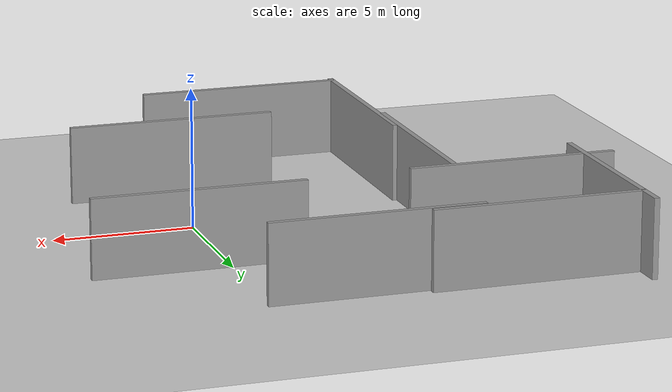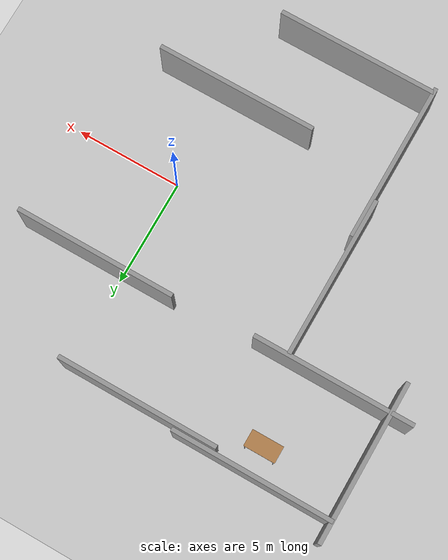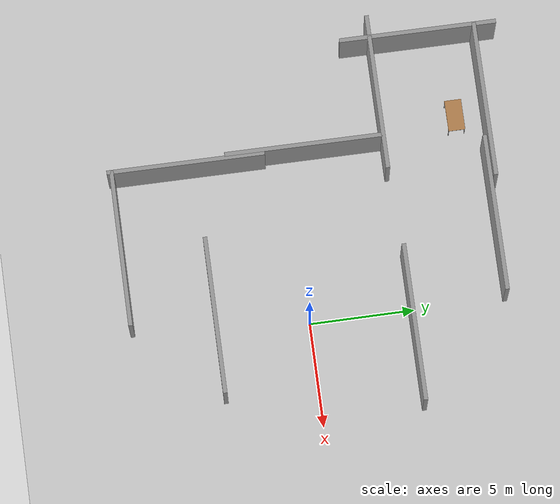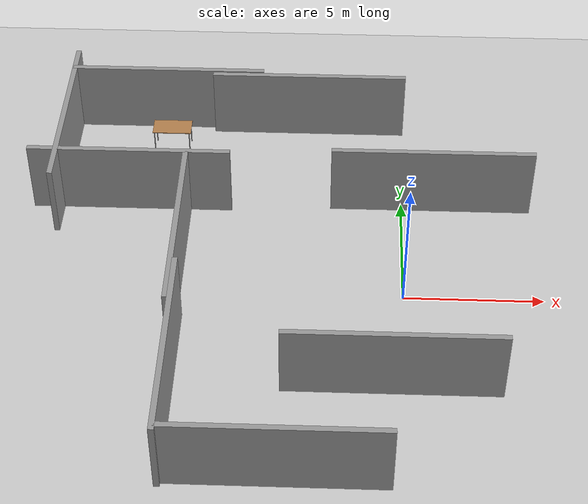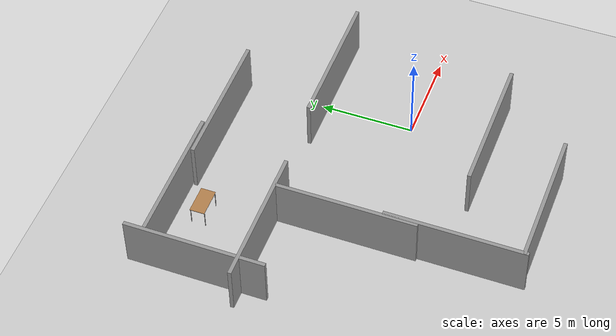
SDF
<sdf version="1.7">
 <world name="default">
  <model name="ground_plane">
   <static>1</static>
   <link name="link_1">
    <collision name="collision">
     <geometry><plane><normal>0 0 1</normal><size>100 100</size></plane></geometry>
     <surface><friction><ode><mu>100</mu><mu2>50</mu2></ode></friction></surface>
    </collision>
    <visual name="visual">
     <cast_shadows>0</cast_shadows>
     <geometry><plane><normal>0 0 1</normal><size>100 100</size></plane></geometry>
     <material>
      <script><uri>file://media/materials/scripts/gazebo.material</uri><name>Gazebo/Grey</name></script>
     </material>
    </visual>
   </link>
  </model>
  <model name="grey_wall_clone">
   <static>1</static>
   <link name="link_3">
    <pose>0 0 1.4 0 -0 0</pose>
    <collision name="collision"><geometry><box><size>7.5 0.2 2.8</size></box></geometry></collision>
    <visual name="visual">
     <cast_shadows>0</cast_shadows>
     <geometry><box><size>7.5 0.2 2.8</size></box></geometry>
     <material>
      <script>
       <uri>model://grey_wall/materials/scripts</uri>
       <uri>model://grey_wall/materials/textures</uri>
       <name>vrc/grey_wall</name>
      </script>
     </material>
    </visual>
   </link>
   <pose>-3.62328 9.31354 0 0 -0 0</pose>
  </model>
  <model name="grey_wall_clone_0">
   <static>1</static>
   <link name="link_4">
    <pose>0 0 1.4 0 -0 0</pose>
    <collision name="collision"><geometry><box><size>7.5 0.2 2.8</size></box></geometry></collision>
    <visual name="visual">
     <cast_shadows>0</cast_shadows>
     <geometry><box><size>7.5 0.2 2.8</size></box></geometry>
     <material>
      <script>
       <uri>model://grey_wall/materials/scripts</uri>
       <uri>model://grey_wall/materials/textures</uri>
       <name>vrc/grey_wall</name>
      </script>
     </material>
    </visual>
   </link>
   <pose>-4.22091 -8.36865 0 0 -0 0</pose>
  </model>
  <model name="grey_wall_clone_3">
   <static>1</static>
   <link name="link_9">
    <pose>0 0 1.4 0 -0 0</pose>
    <collision name="collision"><geometry><box><size>7.5 0.2 2.8</size></box></geometry></collision>
    <visual name="visual">
     <cast_shadows>0</cast_shadows>
     <geometry><box><size>7.5 0.2 2.8</size></box></geometry>
     <material>
      <script>
       <uri>model://grey_wall/materials/scripts</uri>
       <uri>model://grey_wall/materials/textures</uri>
       <name>vrc/grey_wall</name>
      </script>
     </material>
    </visual>
   </link>
   <pose>-7.89759 -4.84016 0 0 0 -1.57262</pose>
  </model>
  <model name="grey_wall_clone_3_clone">
   <static>1</static>
   <link name="link_10">
    <pose>0 0 1.4 0 -0 0</pose>
    <collision name="collision"><geometry><box><size>7.5 0.2 2.8</size></box></geometry></collision>
    <visual name="visual">
     <cast_shadows>0</cast_shadows>
     <geometry><box><size>7.5 0.2 2.8</size></box></geometry>
     <material>
      <script>
       <uri>model://grey_wall/materials/scripts</uri>
       <uri>model://grey_wall/materials/textures</uri>
       <name>vrc/grey_wall</name>
      </script>
     </material>
    </visual>
   </link>
   <pose>-8.04808 0.776161 0 0 0 -1.57262</pose>
  </model>
  <model name="grey_wall_clone_3_clone_0">
   <static>1</static>
   <link name="link_11">
    <pose>0 0 1.4 0 -0 0</pose>
    <collision name="collision"><geometry><box><size>7.5 0.2 2.8</size></box></geometry></collision>
    <visual name="visual">
     <cast_shadows>0</cast_shadows>
     <geometry><box><size>7.5 0.2 2.8</size></box></geometry>
     <material>
      <script>
       <uri>model://grey_wall/materials/scripts</uri>
       <uri>model://grey_wall/materials/textures</uri>
       <name>vrc/grey_wall</name>
      </script>
     </material>
    </visual>
   </link>
   <pose>-12.8485 6.88392 0 0 0 -1.57262</pose>
  </model>
  <model name="grey_wall_clone_clone">
   <static>1</static>
   <link name="link_12">
    <pose>0 0 1.4 0 -0 0</pose>
    <collision name="collision"><geometry><box><size>7.5 0.2 2.8</size></box></geometry></collision>
    <visual name="visual">
     <cast_shadows>0</cast_shadows>
     <geometry><box><size>7.5 0.2 2.8</size></box></geometry>
     <material>
      <script>
       <uri>model://grey_wall/materials/scripts</uri>
       <uri>model://grey_wall/materials/textures</uri>
       <name>vrc/grey_wall</name>
      </script>
     </material>
    </visual>
   </link>
   <pose>-9.15167 9.57413 0 0 -0 0</pose>
  </model>
  <model name="grey_wall_clone_clone_0">
   <static>1</static>
   <link name="link_13">
    <pose>0 0 1.4 0 -0 0</pose>
    <collision name="collision"><geometry><box><size>7.5 0.2 2.8</size></box></geometry></collision>
    <visual name="visual">
     <cast_shadows>0</cast_shadows>
     <geometry><box><size>7.5 0.2 2.8</size></box></geometry>
     <material>
      <script>
       <uri>model://grey_wall/materials/scripts</uri>
       <uri>model://grey_wall/materials/textures</uri>
       <name>vrc/grey_wall</name>
      </script>
     </material>
    </visual>
   </link>
   <pose>-10.1587 4.57516 0 0 -0 0</pose>
  </model>
  <model name="grey_wall_clone_clone_2">
   <static>1</static>
   <link name="link_14">
    <pose>0 0 1.4 0 -0 0</pose>
    <collision name="collision"><geometry><box><size>7.5 0.2 2.8</size></box></geometry></collision>
    <visual name="visual">
     <cast_shadows>0</cast_shadows>
     <geometry><box><size>7.5 0.2 2.8</size></box></geometry>
     <material>
      <script>
       <uri>model://grey_wall/materials/scripts</uri>
       <uri>model://grey_wall/materials/textures</uri>
       <name>vrc/grey_wall</name>
      </script>
     </material>
    </visual>
   </link>
   <pose>1.07674 4.80401 0 0 -0 0</pose>
  </model>
  <model name="table">
   <static>1</static>
   <link name="link_26">
    <collision name="surface">
     <pose>0 0 1 0 -0 0</pose>
     <geometry><box><size>1.5 0.8 0.03</size></box></geometry>
     <surface><friction><ode><mu>0.6</mu><mu2>0.6</mu2></ode></friction></surface>
    </collision>
    <visual name="visual1">
     <pose>0 0 1 0 -0 0</pose>
     <geometry><box><size>1.5 0.8 0.03</size></box></geometry>
     <material>
      <script><uri>file://media/materials/scripts/gazebo.material</uri><name>Gazebo/Wood</name></script>
     </material>
    </visual>
    <collision name="front_left_leg">
     <pose>0.68 0.38 0.5 0 -0 0</pose>
     <geometry><cylinder><radius>0.02</radius><length>1</length></cylinder></geometry>
    </collision>
    <visual name="front_left_leg">
     <pose>0.68 0.38 0.5 0 -0 0</pose>
     <geometry><cylinder><radius>0.02</radius><length>1</length></cylinder></geometry>
     <material>
      <script><uri>file://media/materials/scripts/gazebo.material</uri><name>Gazebo/Grey</name></script>
     </material>
    </visual>
    <collision name="front_right_leg">
     <pose>0.68 -0.38 0.5 0 -0 0</pose>
     <geometry><cylinder><radius>0.02</radius><length>1</length></cylinder></geometry>
    </collision>
    <visual name="front_right_leg">
     <pose>0.68 -0.38 0.5 0 -0 0</pose>
     <geometry><cylinder><radius>0.02</radius><length>1</length></cylinder></geometry>
     <material>
      <script><uri>file://media/materials/scripts/gazebo.material</uri><name>Gazebo/Grey</name></script>
     </material>
    </visual>
    <collision name="back_right_leg">
     <pose>-0.68 -0.38 0.5 0 -0 0</pose>
     <geometry><cylinder><radius>0.02</radius><length>1</length></cylinder></geometry>
    </collision>
    <visual name="back_right_leg">
     <pose>-0.68 -0.38 0.5 0 -0 0</pose>
     <geometry><cylinder><radius>0.02</radius><length>1</length></cylinder></geometry>
     <material>
      <script><uri>file://media/materials/scripts/gazebo.material</uri><name>Gazebo/Grey</name></script>
     </material>
    </visual>
    <collision name="back_left_leg">
     <pose>-0.68 0.38 0.5 0 -0 0</pose>
     <geometry><cylinder><radius>0.02</radius><length>1</length></cylinder></geometry>
    </collision>
    <visual name="back_left_leg">
     <pose>-0.68 0.38 0.5 0 -0 0</pose>
     <geometry><cylinder><radius>0.02</radius><length>1</length></cylinder></geometry>
     <material>
      <script><uri>file://media/materials/scripts/gazebo.material</uri><name>Gazebo/Grey</name></script>
     </material>
    </visual>
   </link>
   <pose>-8.96511 8.18291 0 0 -0 0</pose>
  </model>
  <model name="grey_wall_clone_1_clone">
   <static>1</static>
   <link name="link_28">
    <pose>0 0 1.4 0 -0 0</pose>
    <collision name="collision"><geometry><box><size>7.5 0.2 2.8</size></box></geometry></collision>
    <visual name="visual">
     <cast_shadows>0</cast_shadows>
     <geometry><box><size>7.5 0.2 2.8</size></box></geometry>
     <material>
      <script>
       <uri>model://grey_wall/materials/scripts</uri>
       <uri>model://grey_wall/materials/textures</uri>
       <name>vrc/grey_wall</name>
      </script>
     </material>
    </visual>
   </link>
   <pose>-0.471432 -4.39628 0 0 -0 0</pose>
  </model>
 </world>
</sdf>
